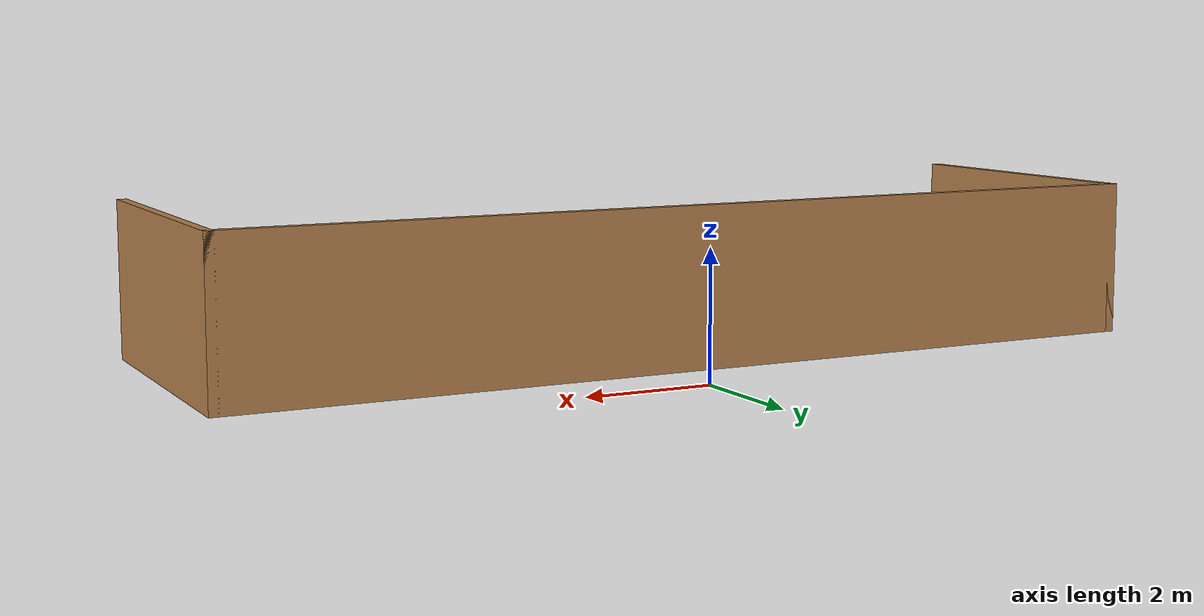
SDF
<?xml version='1.0'?>
<sdf version='1.7'>
  <model name='room2'>
    <pose>-0.695 -3.0325 0 0 -0 0</pose>
    <link name='Wall_0'>
      <collision name='Wall_0_Collision'>
        <geometry>
          <box>
            <size>5 0.15 2.5</size>
          </box>
        </geometry>
        <pose>0 0 1.25 0 -0 0</pose>
      </collision>
      <visual name='Wall_0_Visual'>
        <pose>0 0 1.25 0 -0 0</pose>
        <geometry>
          <box>
            <size>5 0.15 2.5</size>
          </box>
        </geometry>
        <material>
          <script>
            <uri>file://media/materials/scripts/gazebo.material</uri>
            <name>Gazebo/Wood</name>
          </script>
          <ambient>1 1 1 1</ambient>
        </material>
        <meta>
          <layer>0</layer>
        </meta>
      </visual>
      <pose>-7.675 -0.5325 0 0 -0 1.5708</pose>
    </link>
    <link name='Wall_1'>
      <collision name='Wall_1_Collision'>
        <geometry>
          <box>
            <size>15.5 0.15 2.5</size>
          </box>
        </geometry>
        <pose>0 0 1.25 0 -0 0</pose>
      </collision>
      <visual name='Wall_1_Visual'>
        <pose>0 0 1.25 0 -0 0</pose>
        <geometry>
          <box>
            <size>15.5 0.15 2.5</size>
          </box>
        </geometry>
        <material>
          <script>
            <uri>file://media/materials/scripts/gazebo.material</uri>
            <name>Gazebo/Wood</name>
          </script>
          <ambient>1 1 1 1</ambient>
        </material>
        <meta>
          <layer>0</layer>
        </meta>
      </visual>
      <pose>0 1.8925 0 0 -0 0</pose>
    </link>
    <link name='Wall_2'>
      <collision name='Wall_2_Collision'>
        <geometry>
          <box>
            <size>5 0.15 2.5</size>
          </box>
        </geometry>
        <pose>0 0 1.25 0 -0 0</pose>
      </collision>
      <visual name='Wall_2_Visual'>
        <pose>0 0 1.25 0 -0 0</pose>
        <geometry>
          <box>
            <size>5 0.15 2.5</size>
          </box>
        </geometry>
        <material>
          <script>
            <uri>file://media/materials/scripts/gazebo.material</uri>
            <name>Gazebo/Wood</name>
          </script>
          <ambient>1 1 1 1</ambient>
        </material>
        <meta>
          <layer>0</layer>
        </meta>
      </visual>
      <pose>7.675 -0.5325 0 0 -0 -1.5708</pose>
    </link>
    <static>1</static>
  </model>
</sdf>
